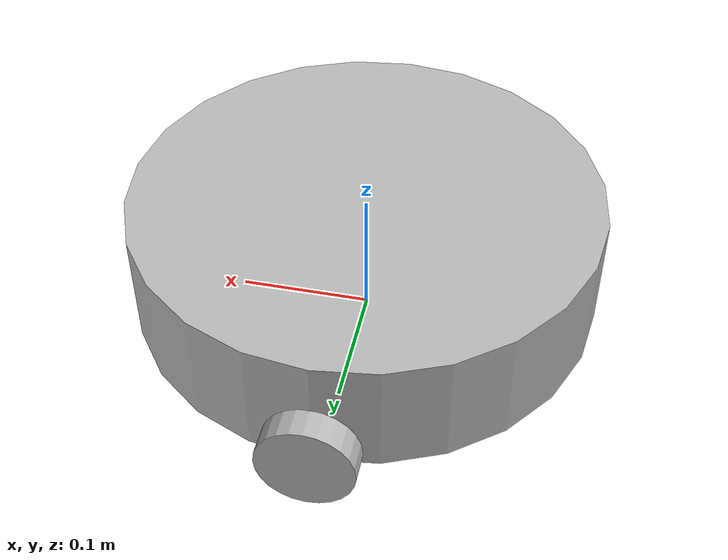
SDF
<?xml version='1.0'?>
<sdf version='1.4'>
 <model name='Kobuki2'>
 <static>false</static>

  <link name='chassis'>
   <pose> 0 0 .0645 0 0 0</pose>

   <collision name='collision'>
    <geometry>
     <cylinder>
     	<radius>.177</radius>
     	<length>.089</length>
     </cylinder>
    </geometry>
   </collision>

   <visual name='visual'>
    <geometry>
     <cylinder>
     	<radius>.177</radius>
     	<length>.089</length>
     </cylinder>
    </geometry>
   </visual>

   <collision name='caster_collision'>
    <pose>.0885 0 -.0545 0 0 0</pose>
    <geometry>
     <sphere>
      <radius>.01</radius>
     </sphere>
    </geometry>

    <surface>
     <friction>
      <ode>
       <mu>0</mu>
       <mu2>0</mu2>
       <slip1>1.0</slip1>
       <slip2>1.0</slip2>
      </ode>
     </friction>
    </surface>
   </collision>

   <visual name='caster_visual'>
    <pose>.0885 0 -.0545 0 0 0</pose>
    <geometry>
     <sphere>
      <radius>.01</radius>
     </sphere>
    </geometry>
   </visual>

 </link>

 <link name='left_wheel'>
  <pose> 0 -.187 0.035 1.5707 0 0</pose>
  <collision name='collision'>
   <geometry>
     <cylinder>
     	<radius>.035</radius>
     	<length>.021</length>
     </cylinder>
   </geometry>
  </collision>
  <visual name='visual'>
    <geometry>
     <cylinder>
     	<radius>.035</radius>
     	<length>.021</length>
     </cylinder>
    </geometry>
  </visual>
 </link>

 <link name='right_wheel'>
  <pose> 0 .187 0.035 1.5707 0 0</pose>
  <collision name='collision'>
   <geometry>
     <cylinder>
     	<radius>.035</radius>
     	<length>.021</length>
     </cylinder>
   </geometry>
  </collision>
  <visual name='visual'>
    <geometry>
     <cylinder>
     	<radius>.035</radius>
     	<length>.021</length>
     </cylinder>
    </geometry>
  </visual>
 </link>

 <joint type='revolute' name='left_wheel_hinge'>
  <pose>0 0 -0.035 0 0 0</pose>
  <child>left_wheel</child>
  <parent>chassis</parent>
  <axis>
   <xyz>0 1 0</xyz>
  </axis>
 </joint>

 <joint type='revolute' name='right_wheel_hinge'>
  <pose>0 0 0.035 0 0 0</pose>
  <child>right_wheel</child>
  <parent>chassis</parent>
  <axis>
   <xyz>0 1 0</xyz>
  </axis>
 </joint>

 </model>
</sdf>
